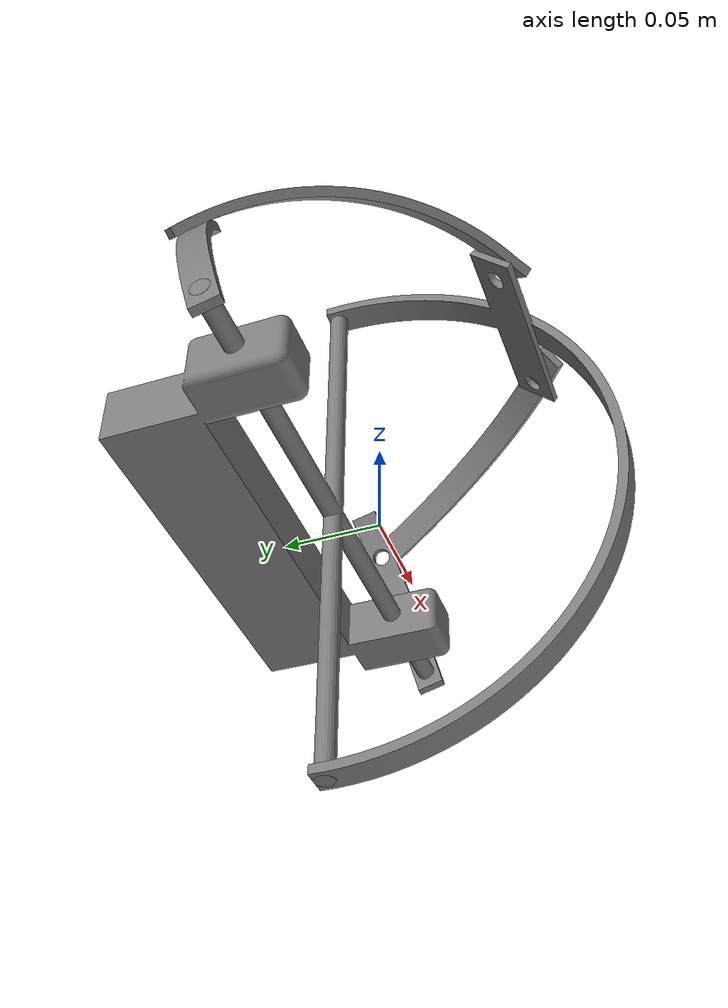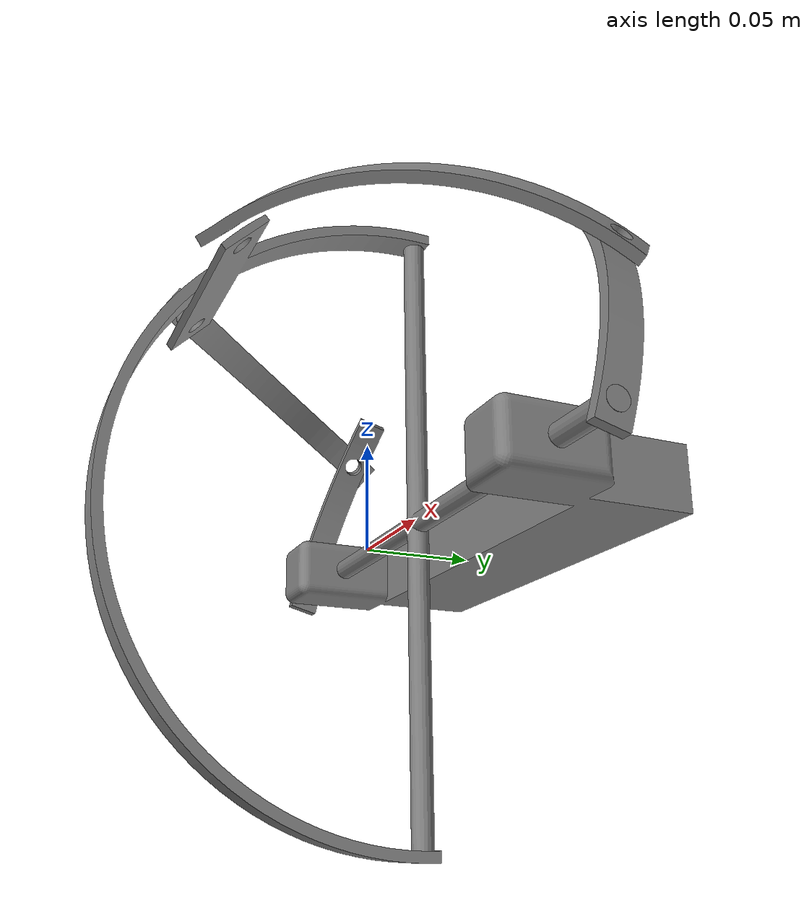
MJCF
<mujoco model="retake">
  <compiler angle="radian"/>

  <asset>
    <mesh name="base_link" file="base_link.stl" scale="0.001 0.001 0.001"/>
    <mesh name="Component91" file="Component91.stl" scale="0.001 0.001 0.001"/>
    <mesh name="Component31" file="Component31.stl" scale="0.001 0.001 0.001"/>
    <mesh name="Component71" file="Component71.stl" scale="0.001 0.001 0.001"/>
    <mesh name="Component9Mirror_11" file="Component9Mirror_11.stl" scale="0.001 0.001 0.001"/>
    <mesh name="Component7Mirror_11" file="Component7Mirror_11.stl" scale="0.001 0.001 0.001"/>
    <mesh name="Component21" file="Component21.stl" scale="0.001 0.001 0.001"/>
  </asset>

  <worldbody>
    <geom type="mesh" mesh="base_link"/>
    <body name="Component21" pos="0.09 0.025 0.015">
      <inertial pos="-0.0895 9.40817e-10 1.5566e-09" quat="0.5 0.5 0.5 0.5" mass="0.370855" diaginertia="0.0029201 0.00153405 0.00139069"/>
      <joint name="Revolute_14" pos="0 0 0" axis="-1 0 0" range="-30 30"/>
      <geom pos="-0.09 -0.025 -0.015" quat="1 0 0 0" type="mesh" mesh="Component21"/>
      <body name="Component91" pos="0.0655 0 0">
        <inertial pos="-0.0145427 0.0126283 0.0471294" quat="0.977286 -0.128662 -0.166958 0.0219805" mass="0.0653215" diaginertia="7.56494e-05 7.53184e-05 2.27264e-06"/>
        <joint name="Revolute_6" pos="0 0 0" axis="1 0 0" range="-30 30"/>
        <geom pos="-0.1555 -0.025 -0.015" type="mesh" mesh="Component91"/>
        <body name="Component71" pos="-0.018016 -0.071217 0.041117">
          <inertial pos="-0.0405315 0.0241298 0.0615981" quat="0.504602 0.0510078 -0.635686 0.58196" mass="0.108228" diaginertia="0.000301298 0.000295636 9.87263e-06"/>
          <joint name="Revolute_10" pos="0 0 0" axis="0.855364 0.134075 0.500376" range="-30 30"/>
          <geom pos="-0.137484 0.046217 -0.056117" quat="1 0 0 0" type="mesh" mesh="Component71"/>
        </body>
      </body>
      <body name="Component31" pos="-0.0895 0 0.15">
        <inertial pos="-0.000223009 -0.0954886 -0.129454" quat="0.999977 0.00668603 -0.000893274 -0.000470414" mass="0.33625" diaginertia="0.00403164 0.00353145 0.00061626"/>
        <joint name="Revolute_8" pos="0 0 0" axis="0 0 1" range="-30 30"/>
        <geom pos="-0.0005 -0.025 -0.165" quat="1 0 0 0" type="mesh" mesh="Component31"/>
      </body>
      <body name="Component9Mirror_11" pos="-0.2445 0 0">
        <inertial pos="0.0145427 0.0126283 0.0471294" quat="0.977286 -0.128662 0.166958 -0.0219805" mass="0.0653215" diaginertia="7.56494e-05 7.53184e-05 2.27264e-06"/>
        <joint name="Revolute_11" pos="0 0 0" axis="-1 0 0" range="-30 30"/>
        <geom pos="0.1545 -0.025 -0.015" type="mesh" mesh="Component9Mirror_11"/>
        <body name="Component7Mirror_11" pos="0.290989 0.111212 -0.007765">
          <inertial pos="-0.232419 -0.158345 0.110488" quat="0.582509 0.635689 -0.0505908 0.504008" mass="0.108339" diaginertia="0.000301423 0.0002958 9.83734e-06"/>
          <joint name="Revolute_12" pos="0 0 0" axis="0.855364 -0.134075 -0.500376" range="-30 30"/>
          <geom pos="-0.136489 -0.136212 -0.007235" quat="1 0 0 0" type="mesh" mesh="Component7Mirror_11"/>
        </body>
      </body>
    </body>
  </worldbody>
</mujoco>
